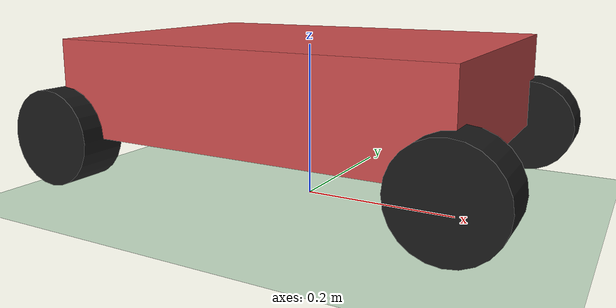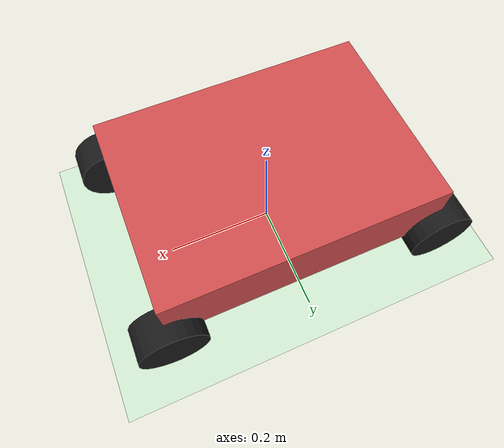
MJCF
<?xml version="1.0"?>
<mujoco model="wmr">

  <worldbody>
    <!-- Optional small ground plane for visualization -->
    <geom name="ground" type="plane" size="10 10 0.1" rgba="0.8 0.9 0.8 1" />

    <!-- Chassis -->
    <body name="chassis" pos="0 0 0.15">
      <geom name="chassis_geom" type="box" size="0.25 0.18 0.06" rgba="0.8 0.3 0.3 1" />

      <!-- Front left wheel -->
      <body name="wheel_fl" pos="0.25 0.18 -0.06">
        <joint name="joint_fl" type="hinge" axis="0 1 0" />
        <geom name="geom_fl" type="cylinder" size="0.06 0.03" quat="0.707 0.707 0 0" rgba="0.1 0.1 0.1 1" />
      </body>

      <!-- Front right wheel -->
      <body name="wheel_fr" pos="0.25 -0.18 -0.06">
        <joint name="joint_fr" type="hinge" axis="0 1 0" />
        <geom name="geom_fr" type="cylinder" size="0.06 0.03" quat="0.707 0.707 0 0" rgba="0.1 0.1 0.1 1" />
      </body>

      <!-- Rear left wheel -->
      <body name="wheel_rl" pos="-0.25 0.18 -0.06">
        <joint name="joint_rl" type="hinge" axis="0 1 0" />
        <geom name="geom_rl" type="cylinder" size="0.06 0.03" quat="0.707 0.707 0 0" rgba="0.1 0.1 0.1 1" />
      </body>

      <!-- Rear right wheel -->
      <body name="wheel_rr" pos="-0.25 -0.18 -0.06">
        <joint name="joint_rr" type="hinge" axis="0 1 0" />
        <geom name="geom_rr" type="cylinder" size="0.06 0.03" quat="0.707 0.707 0 0" rgba="0.1 0.1 0.1 1" />
      </body>

    </body>
  </worldbody>

  <actuator>
    <!-- Independent motors for each wheel -->
    <motor name="motor_fl" joint="joint_fl" gear="100" />
    <motor name="motor_fr" joint="joint_fr" gear="100" />
    <motor name="motor_rl" joint="joint_rl" gear="100" />
    <motor name="motor_rr" joint="joint_rr" gear="100" />
  </actuator>

  <sensor>
    <jointpos joint="joint_fl" />
    <jointvel joint="joint_fl" />
    <jointpos joint="joint_fr" />
    <jointvel joint="joint_fr" />
    <jointpos joint="joint_rl" />
    <jointvel joint="joint_rl" />
    <jointpos joint="joint_rr" />
    <jointvel joint="joint_rr" />

    <!-- simple IMU attached to chassis -->
  </sensor>

  <!-- A small site for mounting sensors on the chassis -->

</mujoco>
